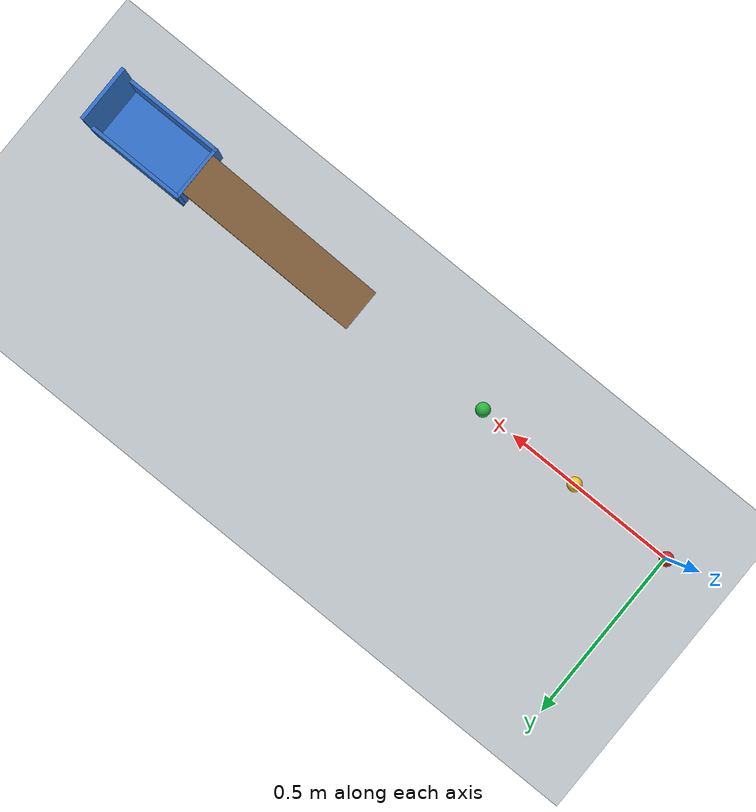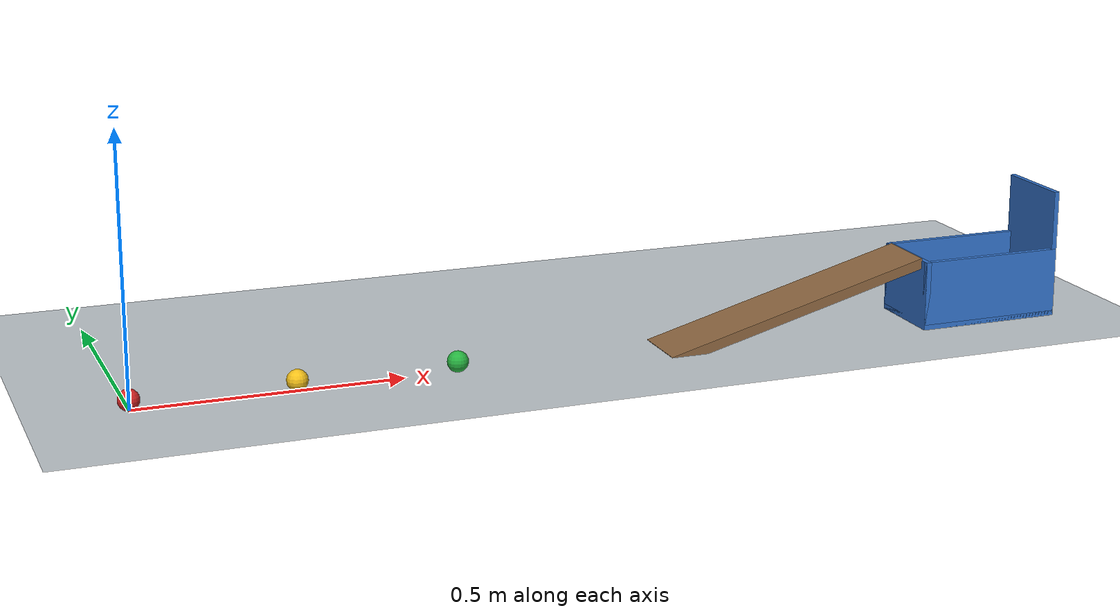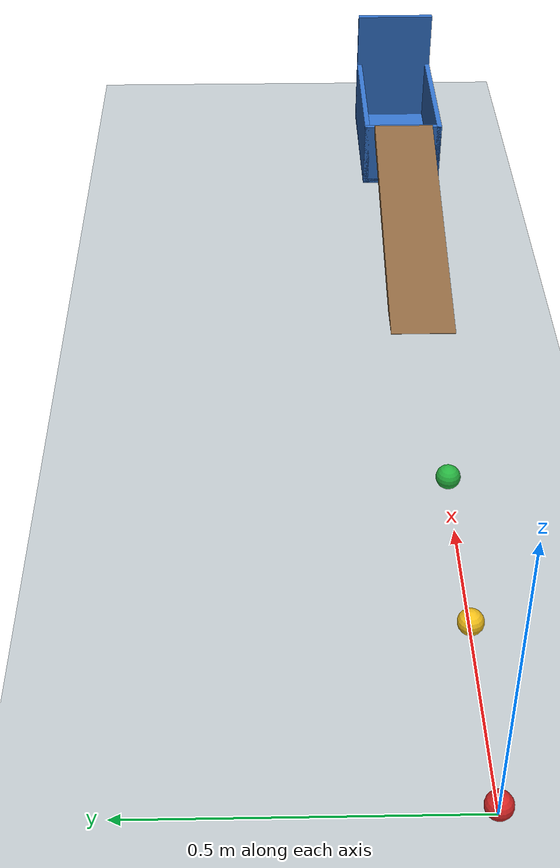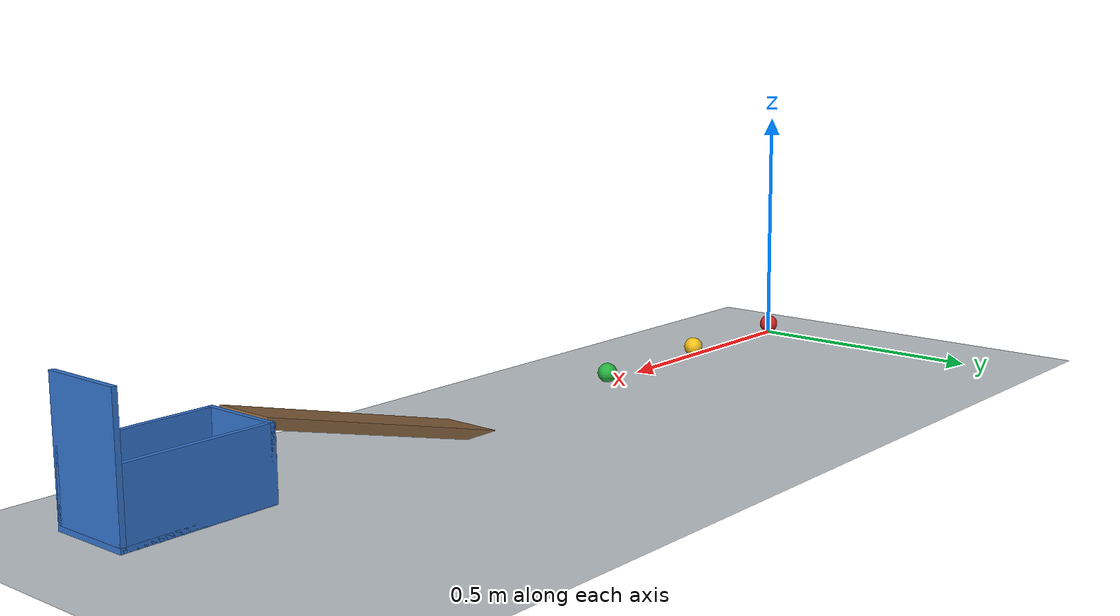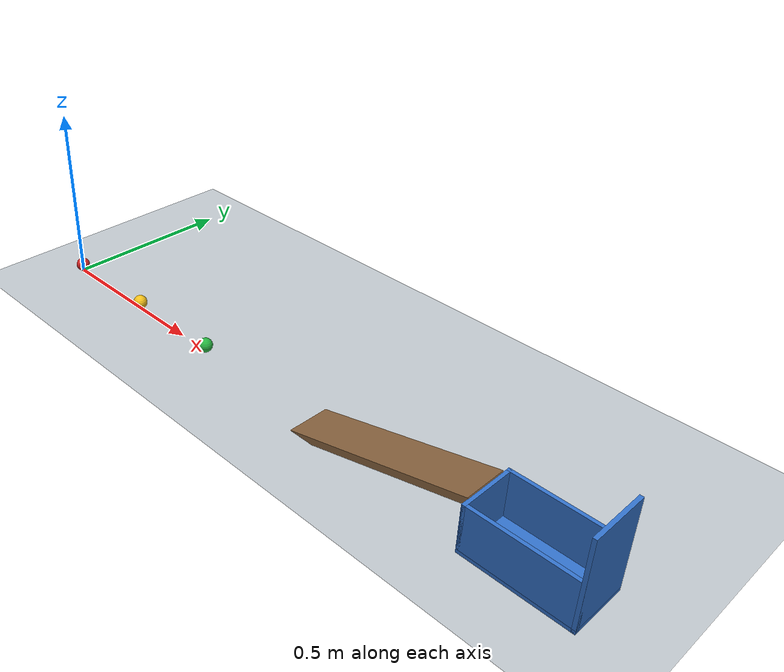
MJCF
<mujoco model="three_ball_chain_into_cup">
  <compiler angle="degree"/>
  <option timestep="0.002" gravity="0 0 -9.81"/>

  <visual>
    <global offwidth="1280" offheight="720"/>
  </visual>

  <asset>
    <material name="floor_mat" rgba="0.75 0.78 0.8 1"/>
    <material name="ramp_mat" rgba="0.55 0.4 0.25 1"/>
    <material name="cup_mat" rgba="0.2 0.45 0.8 1"/>
    <material name="ball1_mat" rgba="0.85 0.15 0.15 1"/>
    <material name="ball2_mat" rgba="0.95 0.75 0.1 1"/>
    <material name="ball3_mat" rgba="0.15 0.7 0.25 1"/>
  </asset>

  <worldbody>
    <light name="sun" pos="0.8 -1.0 2.5" dir="-0.2 0.4 -1" diffuse="0.9 0.9 0.9"/>
    <camera name="side" pos="0.9 -1.8 0.6" xyaxes="1 0 0 0 0.3 1"/>

    <geom name="floor" type="plane" size="5 5 0.1" pos="0 0 0" material="floor_mat" friction="1 0.005 0.0001" solref="0.02 1" priority="1"/>

    <!-- 15 degree ramp: top surface meets the floor at x = 1.0 and rises to z = 0.14 at x = 1.5216 -->
    <geom name="ramp" type="box" size="0.27 0.06 0.01" pos="1.2634 0 0.0592" euler="0 -15 0" material="ramp_mat" friction="1 0.005 0.0001" solref="0.02 1" priority="1"/>

    <body name="ball1" pos="0 0 0.02">
      <freejoint name="ball1_free"/>
      <geom name="ball1_geom" type="sphere" size="0.02" density="1000" material="ball1_mat" friction="0.05 0.005 0.0001" solref="0.005 0.02"/>
    </body>

    <body name="ball2" pos="0.3 0 0.02">
      <freejoint name="ball2_free"/>
      <geom name="ball2_geom" type="sphere" size="0.02" density="1000" material="ball2_mat" friction="0.05 0.005 0.0001" solref="0.005 0.02"/>
    </body>

    <body name="ball3" pos="0.6 0 0.02">
      <freejoint name="ball3_free"/>
      <geom name="ball3_geom" type="sphere" size="0.02" density="1000" material="ball3_mat" friction="0.05 0.005 0.0001" solref="0.005 0.02"/>
    </body>

    <!-- static cup sitting on the floor just past the top of the ramp -->
    <body name="cup" pos="0 0 0">
      <geom name="cup_bottom" type="box" size="0.144 0.08 0.005" pos="1.666 0 0.005" material="cup_mat" friction="1 0.005 0.0001" solref="0.02 1" priority="1"/>
      <geom name="cup_front" type="box" size="0.005 0.08 0.0675" pos="1.527 0 0.0675" material="cup_mat" friction="1 0.005 0.0001" solref="0.02 1" priority="1"/>
      <geom name="cup_back" type="box" size="0.005 0.08 0.125" pos="1.805 0 0.125" material="cup_mat" friction="1 0.005 0.0001" solref="0.02 1" priority="1"/>
      <geom name="cup_left" type="box" size="0.144 0.005 0.0675" pos="1.666 0.075 0.0675" material="cup_mat" friction="1 0.005 0.0001" solref="0.02 1" priority="1"/>
      <geom name="cup_right" type="box" size="0.144 0.005 0.0675" pos="1.666 -0.075 0.0675" material="cup_mat" friction="1 0.005 0.0001" solref="0.02 1" priority="1"/>
    </body>
  </worldbody>

  <keyframe>
    <!-- ball1 starts rolling without slip at 4 m/s along +x (spin 200 rad/s about +y) -->
    <key name="start" qpos="0 0 0.02 1 0 0 0  0.3 0 0.02 1 0 0 0  0.6 0 0.02 1 0 0 0" qvel="4 0 0 0 200 0  0 0 0 0 0 0  0 0 0 0 0 0"/>
  </keyframe>
</mujoco>
